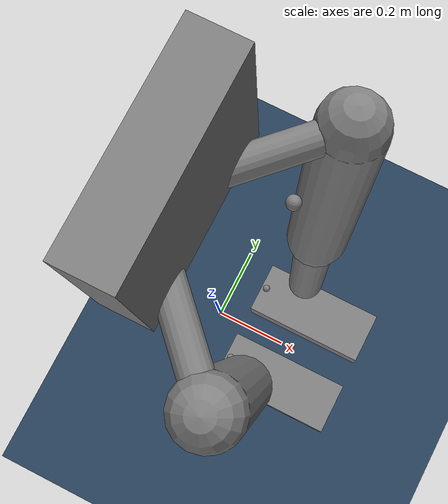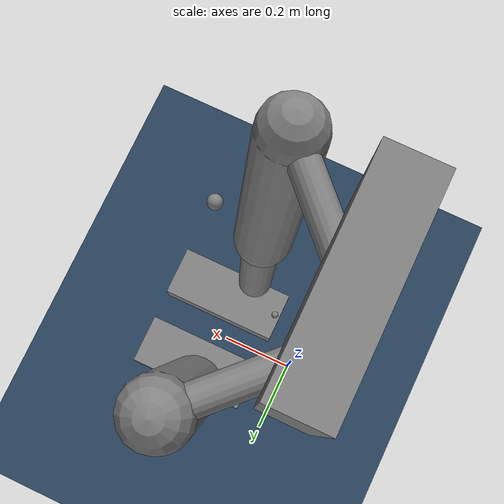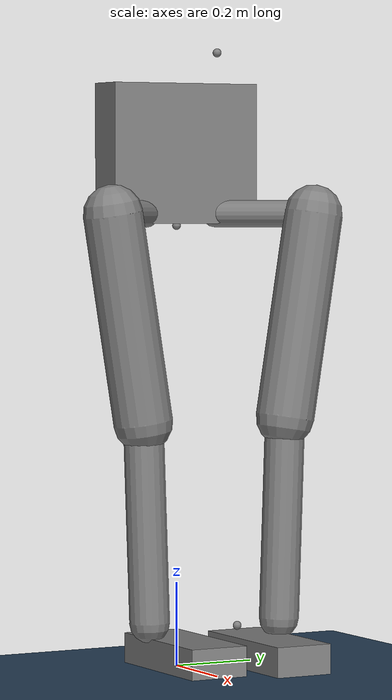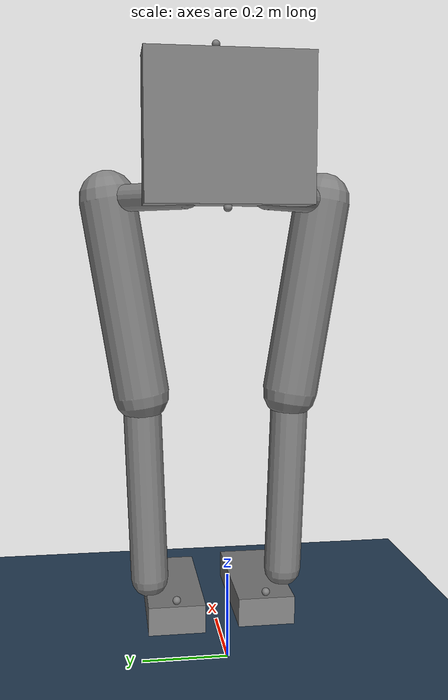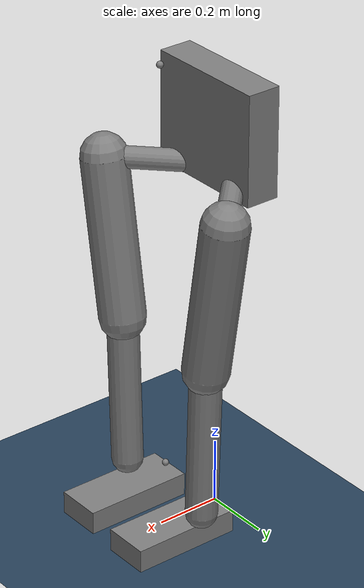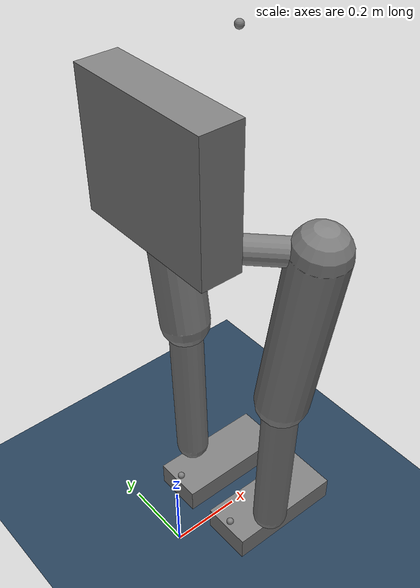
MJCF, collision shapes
<mujoco model='exoskeleton'>
            <compiler meshdir="obj-files" angle="degree" autolimits="true"/>
            <size nuser_actuator='1' nuser_sensor='8' nuser_geom='1'/>
            <option timestep='0.015' iterations='25' solver='CG' gravity='0 0 -9.81'>
                <flag multiccd="enable" energy="enable"/>
            </option>

            <visual>
                <map force="0.1" zfar="30"/>
                <rgba haze="0.15 0.25 0.35 1"/>
                <quality shadowsize="4096"/>
                <global offwidth="800" offheight="800"/>
            </visual>

            <!-- Nested defaults for exoskeleton, collisions, and joints -->
            <default>
                <default class="exoskeleton">
                <geom material="march_grey" group="2" contype="0" conaffinity="0"/>
                </default>

                <default class="collision">
                <geom type="capsule" group="3" contype="1" conaffinity="1"/>
                </default>

                <default class="L_collision">
                <geom type="capsule" group="3" contype="2" conaffinity="4"/>
                </default>

                <default class="R_collision">
                <geom type="capsule" group="3" contype="4" conaffinity="2"/>
                </default>

                <default class="HAA_joint">
                <joint damping="107.692308" armature="5.4" frictionloss="0" stiffness="0"/>
                </default>

                <default class="ADPF_joint">
                <joint damping="43.658537" armature="2.2" frictionloss="0" stiffness="0"/>
                </default>

                <default class="rotational_joint">
                <joint damping="63.451777" armature="9.98" frictionloss="0" stiffness="0"/>
                </default>

                <default class="AIE_joint">
                <joint damping="63.451777" armature="2.2" frictionloss="0" stiffness="0"/>
                </default>
            </default>

            <asset>
                <texture type="skybox" builtin="gradient" rgb1=".3 .5 .7" rgb2="0 0 0" width="512" height="512"/>
                <texture name="body" type="cube" builtin="flat" mark="cross" width="127" height="1278"
                        rgb1="0.8 0.6 0.4" rgb2="0.8 0.6 0.4" markrgb="1 1 1" random="0.01"/>
                <texture name="grid" type="2d" builtin="checker" width="512" height="512" rgb1=".1 .2 .3" rgb2=".2 .3 .4"/>
                <material name="grid" texture="grid" texrepeat="1 1" texuniform="true" reflectance=".2"/>
                <material name="march_grey" rgba=".87 .89 .91 1"/>
                <material name="collision" rgba="1 0 0 1"/>

                <mesh name="backpack"    file="/home/project-march-pc/march-x/ros2_ws/install/march_bringup/share/march_bringup/description/march9/obj-files/Backpack.obj"/>
                <mesh name="L_Ankle"     file="/home/project-march-pc/march-x/ros2_ws/install/march_bringup/share/march_bringup/description/march9/obj-files/L_Ankle.obj"/>
                <mesh name="L_Hip"       file="/home/project-march-pc/march-x/ros2_ws/install/march_bringup/share/march_bringup/description/march9/obj-files/L_Hip.obj"/>
                <mesh name="L_UpperLeg"  file="/home/project-march-pc/march-x/ros2_ws/install/march_bringup/share/march_bringup/description/march9/obj-files/L_UpperLeg.obj"/>
                <mesh name="L_LowerLeg"  file="/home/project-march-pc/march-x/ros2_ws/install/march_bringup/share/march_bringup/description/march9/obj-files/L_LowerLeg.obj"/>
                <mesh name="L_Sole"      file="/home/project-march-pc/march-x/ros2_ws/install/march_bringup/share/march_bringup/description/march9/obj-files/L_Sole.obj"/>

                <mesh name="R_Ankle"     scale="1 -1 1"    file="/home/project-march-pc/march-x/ros2_ws/install/march_bringup/share/march_bringup/description/march9/obj-files/L_Ankle.obj"/>
                <mesh name="R_Hip"       scale="1 -1 1"    file="/home/project-march-pc/march-x/ros2_ws/install/march_bringup/share/march_bringup/description/march9/obj-files/L_Hip.obj"/>
                <mesh name="R_UpperLeg"  scale="1 -1 1"    file="/home/project-march-pc/march-x/ros2_ws/install/march_bringup/share/march_bringup/description/march9/obj-files/L_UpperLeg.obj"/>
                <mesh name="R_LowerLeg"  scale="1 -1 1"    file="/home/project-march-pc/march-x/ros2_ws/install/march_bringup/share/march_bringup/description/march9/obj-files/L_LowerLeg.obj"/>
                <mesh name="R_Sole"      scale="1 -1 1"    file="/home/project-march-pc/march-x/ros2_ws/install/march_bringup/share/march_bringup/description/march9/obj-files/L_Sole.obj"/>
            </asset>

            <actuator>
                <!-- User parameter is the maximum no-load motor RPM -->
                <motor name="left_ankle_dpf"    gear="195"  joint="left_ankle_dpf" forcerange="-180 180" forcelimited="true" ctrlrange="-1 1"/>
                <motor name="left_hip_aa"     gear="390"  joint="left_hip_aa" forcerange="-340 340" forcelimited="true" ctrlrange="-1 1"/>
                <motor name="left_hip_fe"     gear="300" joint="left_hip_fe" forcerange="-250 250" forcelimited="true" ctrlrange="-1 1"/>
                <motor name="left_knee"     gear="300"  joint="left_knee" forcerange="-250 250" forcelimited="true" ctrlrange="-1 1"/>
                <motor name="right_ankle_dpf"    gear="195"  joint="right_ankle_dpf" forcerange="-180 180" forcelimited="true" ctrlrange="-1 1"/>
                <motor name="right_hip_aa"     gear="390"  joint="right_hip_aa" forcerange="-340 340" forcelimited="true" ctrlrange="-1 1"/>
                <motor name="right_hip_fe"     gear="300" joint="right_hip_fe" forcerange="-250 250" forcelimited="true" ctrlrange="-1 1"/>
                <motor name="right_knee"     gear="300"  joint="right_knee" forcerange="-250 250" forcelimited="true" ctrlrange="-1 1"/>
            </actuator>

            <sensor>
                <!-- User parameter is the number of absolute encoder bits -->
                <!-- encodersoutput position; connected to the actuator -->
                <jointpos name="L_ADPF_pos_output" joint="left_ankle_dpf" user="18" noise="000"/>
                <jointpos name="L_AIE_pos_output" joint="left_ankle_ie" user="18" noise="000"/>
                <jointpos name="L_HAA_pos_output" joint="left_hip_aa" user="18" noise="000"/>
                <jointpos name="L_HFE_pos_output" joint="left_hip_fe" user="18" noise="000"/>
                <jointpos name="L_KFE_pos_output" joint="left_knee" user="18" noise="000"/>
                <jointpos name="R_ADPF_output" joint="right_ankle_dpf" user="18" noise="000"/>
                <jointpos name="R_AIE_output" joint="right_ankle_ie" user="18" noise="000"/>
                <jointpos name="R_HAA_output" joint="right_hip_aa" user="18" noise="000"/>
                <jointpos name="R_HFE_output" joint="right_hip_fe" user="18" noise="000"/>
                <jointpos name="R_KFE_output" joint="right_knee" user="18" noise="000"/>
                <!-- encodersoutput velocity; connected to the actuator -->
                <jointvel name="left_ankle_dpf_vel_output" joint="left_ankle_dpf" user="18" noise="000"/>
                <jointvel name="left_hip_aa_vel_output" joint="left_hip_aa" user="18" noise="000"/>
                <jointvel name="left_hip_fe_vel_output" joint="left_hip_fe" user="18" noise="000"/>
                <jointvel name="left_knee_vel_output" joint="left_knee" user="18" noise="000"/>
                <jointvel name="right_ankle_dpf_vel_output" joint="right_ankle_dpf" user="18" noise="000"/>
                <jointvel name="right_hip_aa_vel_output" joint="right_hip_aa" user="18" noise="000"/>
                <jointvel name="right_hip_fe_vel_output" joint="right_hip_fe" user="18" noise="000"/>
                <jointvel name="right_knee_vel_output" joint="right_knee" user="18" noise="000"/>
                <!-- torque sensors; connected to the actuator-->

            <!--    TODO: This could also be of the type actuatorvel -->
                <torque name="left_ankle_dpf_tor_output" site="tor_L_ADPF" user="13" noise="000"/>
                <torque name="left_hip_aa_tor_output" site="tor_L_HAA" user="13" noise="000"/>
                <torque name="right_ankle_dpf_tor_output" site="tor_R_ADPF" user="13" noise="000"/>
                <torque name="right_hip_aa_tor_output" site="tor_R_HAA" user="13" noise="000"/>

                <!-- Noise & cutoff must be determined -->
                <framequat name='backpack_orientation' objtype='site' objname='imu_backpack'/>
                <gyro name='vel_imu_backpack' site='imu_backpack' noise='5e-4' cutoff='34.9'/>
                <accelerometer name='acc_imu_backpack' site='imu_backpack' noise='1e-5' cutoff='157'/>
            </sensor>
            <keyframe><key name='stand' qpos='0 0 1.05 1 0 0 0 0 0 0 0 0 0 0 0 0 0'/></keyframe><worldbody><geom name='floor' size='0 0 .05' type='plane' material='grid' pos='0 0 0' conaffinity='15' condim='6' solref='0.000002 1' solimp='0.99 0.999 0.000001' friction='3 0.005 0.0001'/><light name='spotlight' mode='targetbodycom' target='backpack' diffuse='.8 .8 .8' specular='0.3 0.3 0.3' pos='0 -20 4' cutoff='10'/>
            <body name="safety_catcher" pos="0 0 1.05">
            <inertial pos="0 0 0" mass="0.1" diaginertia="10 10 10"/>

            <joint name='safety_catch_free' type='free'/>

            <body name="backpack" pos="0 0 0" childclass="exoskeleton">
                <light name="top" pos="0 0 2" mode="trackcom"/>
                <camera name="diag" pos="3 -2.5 1" xyaxes="1 1 0 0 1 2" mode="track"/>
                <camera name="right" pos="0 -3 1" xyaxes="1 0 0 0 1 2" mode="track"/>
                <camera name="feet" pos="1.5 0 -0.9"  xyaxes="0 0 -1 0 1 0" mode="track"/>
                <site name='imu_backpack' size='0.01' pos="0 0 0"/>

                <inertial pos="0.015 0 0.185" mass="4.188"
                        fullinertia="0.1438 0.0429 0.1021 0.000 0.0004 0.0002"/>
                <geom type="mesh" mesh="backpack" />
                <geom name="backpack" type="box"
                    size="0.051 0.189 0.165"
                    pos="0 0 0.17" class="collision"/>

                <site name="imu_torso" size='0.01' pos="0.2 0 0.4"/>

                <!--  LEFT LEG -->
                <body name="L_hip" pos="0.021 0.092 0.028">
                <inertial
                    mass="3.732"
                    pos="0.130 0.174 0.000"
                    fullinertia="0.0146 0.0255 0.0321 -0.0106 0.0000 0.000"/>
                <joint name="left_hip_aa" axis="-1 0 0" range="-45 45" class="HAA_joint" />
                <geom type="mesh" mesh="L_Hip" />
                <geom name="L_hip" fromto="0 0 0 0.169 0.173 0"
                    size="0.032" class="L_collision"/>
                <site name="tor_L_HAA" size="0.01" pos="0 0 0"/>

                <body name="L_UL" pos="0.169 0.173 0">
                    <inertial
                    mass="1.999"
                    pos="0.000 -0.044 -0.408"
                    fullinertia="0.0816 0.0831 0.0069 0.0000 0.0000 -0.0115"/>
                    <joint name="left_hip_fe" axis="0 -1 0" range="-20 115" class="rotational_joint" />
                    <geom type="mesh" mesh="L_UpperLeg"/>
                    <geom name="L_UL" fromto="0 0 0 0 -0.077 -0.478"
                    size="0.069" class="L_collision"/>
                    <site name="tor_L_HFE" size="0.01" pos="0 0 0"/>

                    <body name="L_LL" pos="0 -0.077 -0.478">
                    <inertial
                        mass="2.078"
                        pos="-0.049 0.000 -0.269"
                        fullinertia="0.0388 0.0427 0.0046 -0.0005 -0.0049 -0.0015"/>
                    <joint name="left_knee" axis="0 1 0" range="0 125" class="rotational_joint" />
                    <geom type="mesh" mesh="L_LowerLeg"/>
                    <site name="tor_L_KFE" size="0.01" pos="0 0 0"/>
                    <geom name="L_LL" fromto="0 0 0 0.000 -0.016 -0.474"
                        size="0.047" class="L_collision"/>

                    <body name="L_ankle" pos="0.000 -0.016 -0.474">
                        <inertial
                        mass="0.683"
                        pos="0.070 0.043 -0.002"
                        fullinertia="0.0011 0.0043 0.0047 -0.0010 -0.0006 -0.0003"/>
                        <joint name="left_ankle_dpf" axis="0 -1 0" range="-28 20" class="ADPF_joint"/>
                        <geom type="mesh" mesh="L_Ankle"/>
                        <site name="tor_L_ADPF" size="0.01" pos="0 0 0"/>

                        <body name="L_foot" pos="-0.093 -0.061 -0.025">
                        <inertial
                            mass="0.589"
                            pos="0.139 0.001 -0.052"
                            fullinertia="0.0016 0.0077 0.0083 0.000 -0.0001 0.000"/>
                        <joint name="left_ankle_ie" axis="1 0 0" range="-9 9" class="AIE_joint"/>
                        <geom type="mesh" mesh="L_Sole"/>
                        <site name="tor_L_AIE" size="0.01" pos="0 0 0"/>

                        <geom name="L_foot" type="box" size="0.166 0.07 0.035"
                            pos="0.151 0 -.045"  class="L_collision"
                            friction="3.0"/>

                        <site name="sp0" pos="0 -0.035 0" type="sphere" size=".027" group="10"/>
                        <!-- back right -->
                        <site name="sp1" pos="0  0.035 0" type="sphere" size=".027" group="10"/>
                        <!-- back left -->
                        <site name="sp2" pos=".317 -0.035 0" type="sphere" size=".027" group="10"/>
                        <!-- front right -->
                        <site name="sp3" pos=".317 0.035 0" type="sphere" size=".027" group="10"/>
                        <!-- front left -->

                        </body>
                    </body>
                    </body>
                </body>
                </body>

                <!--  RIGHT LEG -->
                <body name="R_hip" pos="0.021 -0.092 0.028">
                <inertial
                    mass="3.732"
                    pos="0.130 -0.174 0.000"
                    fullinertia="0.0146 0.0255 0.0321 0.0106 0.000 0.000"/>
                <joint name="right_hip_aa" axis="1 0 0" range="-45 45" class="HAA_joint" />
                <geom type="mesh" mesh="R_Hip" />
                <geom name="R_hip" fromto="0 0 0 0.169 -0.173 0"
                    size="0.032" class="R_collision"/>
                <site name="tor_R_HAA" size="0.01" pos="0 0 0"/>

                <body name="R_UL" pos="0.169 -0.173 0">
                    <inertial
                    mass="1.999"
                    pos="0.000 0.044 -0.408"
                    fullinertia="0.0816 0.0831 0.0069 0.0000 0.0000 0.0115"/>
                    <joint name="right_hip_fe" axis="0 -1 0" range="-20 115" class="rotational_joint" />
                    <geom type="mesh" mesh="R_UpperLeg"/>
                    <geom name="R_UL" fromto="0 0 0 0 0.077 -0.478"
                    size="0.069" class="R_collision"/>
                    <site name="tor_R_HFE" size="0.01" pos="0 0 0"/>

                    <body name="R_LL" pos="0 0.077 -0.468">
                    <inertial
                        mass="2.078"
                        pos="-0.049 0.000 -0.269"
                        fullinertia="0.0388 0.0427 0.0046 0.0005 -0.0049 0.0015"/>
                    <joint name="right_knee" axis="0 1 0" range="0 125" class="rotational_joint" />
                    <geom type="mesh" mesh="R_LowerLeg"/>
                    <geom name="R_LL" fromto="0 0 0 0.000 0.016 -0.474"
                        size="0.047" class="R_collision"/>
                    <site name="tor_R_KFE" size="0.01" pos="0 0 0"/>

                    <body name="R_ankle" pos="0.000 0.016 -0.474">
                        <inertial
                        mass="0.683"
                        pos="0.070 -0.043 -0.002"
                        fullinertia="0.0011 0.0043 0.0047 0.0010 -0.0006 0.0003"/>
                        <joint name="right_ankle_dpf" axis="0 -1 0" range="-28 20" class="ADPF_joint"/>
                        <geom type="mesh" mesh="R_Ankle"/>
                        <site name="tor_R_ADPF" size="0.01" pos="0 0 0"/>

                        <body name="R_foot" pos="-0.093 0.061 -0.025">
                        <inertial
                            mass="0.589"
                            pos="0.139 -0.001 -0.052"
                            fullinertia="0.0016 0.0077 0.0083 0.000 -0.0001 0.000"/>
                        <joint name="right_ankle_ie" axis="-1 0 0" range="-9 9" class="AIE_joint"/>
                        <geom type="mesh" mesh="R_Sole"/>
                        <site name="tor_R_AIE" size="0.01" pos="0 0 0"/>

                        <geom name="R_foot" type="box" size="0.166 0.07 0.035"
                            pos="0.151 0 -.045" class="R_collision"
                            friction="3.0"/>

                        <site name="sp4" pos="0 0.035 0" type="sphere" size=".027" group="10"/>
                        <!-- back left -->
                        <site name="sp5" pos="0 -0.035 0" type="sphere" size=".027" group="10"/>
                        <!-- back right -->
                        <site name="sp6" pos=".317 0.035 0" type="sphere" size=".027" group="10"/>
                        <!-- front left -->
                        <site name="sp7" pos=".317 -0.035 0" type="sphere" size=".027" group="10"/>
                        <!-- front right -->

                        </body>
                    </body>
                    </body>
                </body>
                </body>
            </body>
            </body>
        </worldbody></mujoco>
